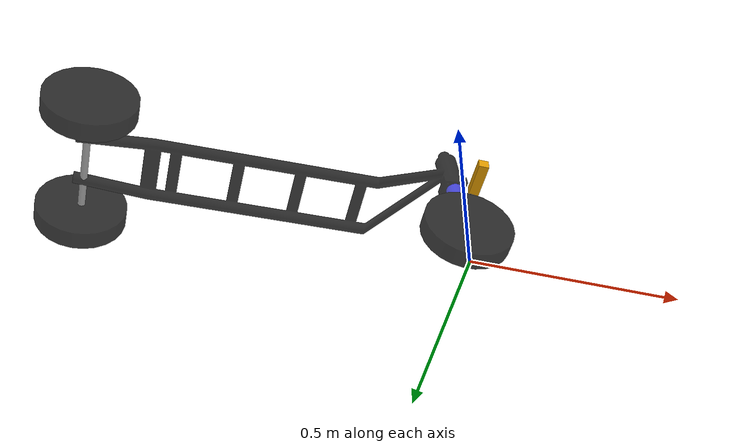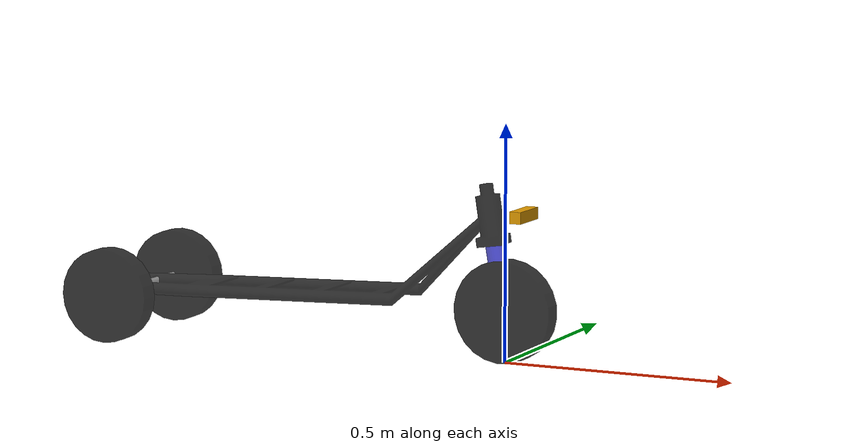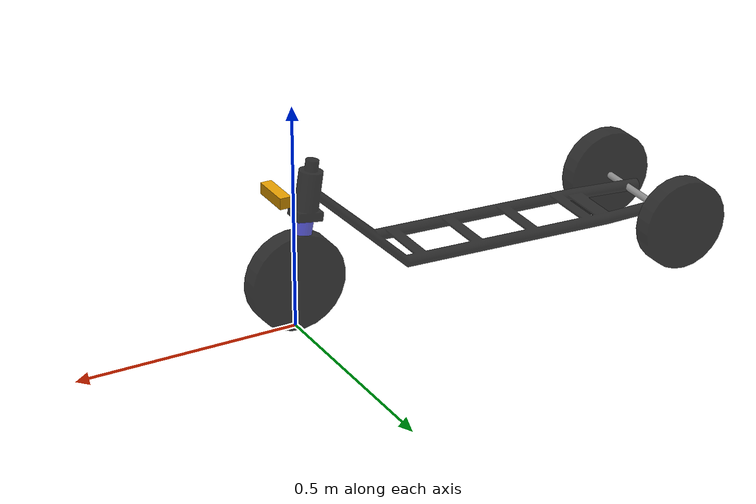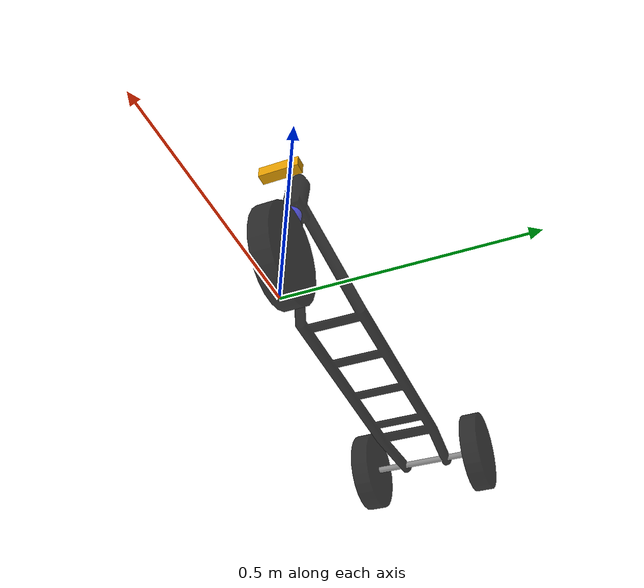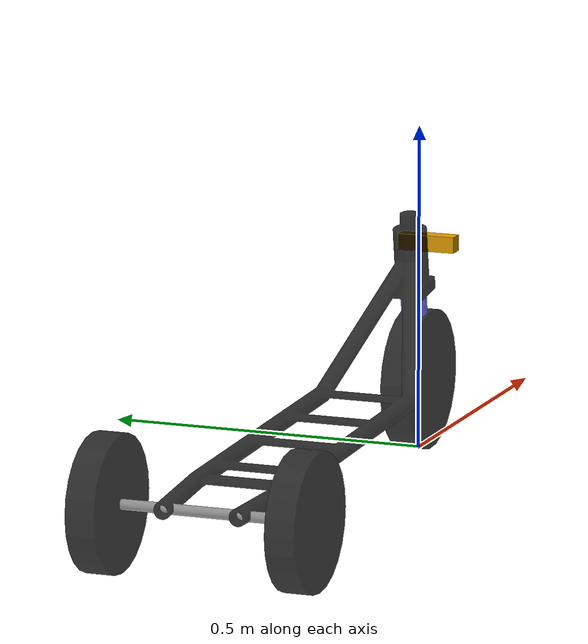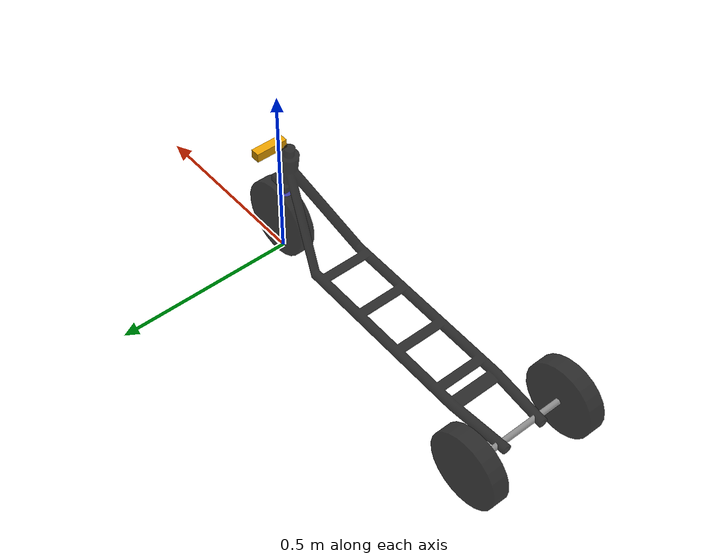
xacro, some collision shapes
<?xml version="1.0"?>
<robot name="scooter" xmlns:xacro="https://www.ros.org/wiki/xacro">

    <xacro:include filename="$(find autonomous-scooter)/urdf/properties.xacro"/>

    <!-- base_link -->
    <link name="base_link"/>

    <!-- steering_link -->
    <link name="steering_link">
        <visual>
            <geometry>
                <cylinder radius="${thick_steering}" length="${steering_length}"/>
            </geometry>
            <origin xyz="0.0 0.0 0.0" rpy="0.0 0.0 0.0"/>
            <material name='blue'/>
        </visual>

        <collision>
            <geometry>
                <cylinder radius="${thick_steering}" length="${steering_length}"/>
            </geometry>
            <origin xyz="0.0 0.0 0.0" rpy="0.0 0.0 0.0"/>
        </collision>

        <mass value="${mass_steering_link}"/>
        <inertia ixx="${steering_ixx}" ixy="${steering_ixy}" ixz="${steering_ixz}" iyy="${steering_iyy}" iyz="${steering_iyz}" izz="${steering_izz}"/>
    </link>

        <joint name="base_to_steering_joint" type="revolute">
            <parent link="base_link"/>
            <child link="steering_link"/>
            <origin xyz="-${(steering_length/2 * cos(alpha))} 0.0 ${(steering_length/2 * sin(alpha)) + rad_front_wheel}" rpy="0.0 -${pi/2 - alpha} 0.0"/>
            <limit lower="-${pi/4}" upper="${pi/4}" effort="0.0" velocity="0.0"/>
            <axis xyz="0 0 1"/>
            <limit effort="30" velocity="1.0"/>
        </joint>

    <!-- front wheel -->
    <link name="front_wheel_link">
        <visual>
            <geometry>
                <cylinder length="${thick_wheel}" radius="${rad_front_wheel}"/>
            </geometry>
            <origin xyz="0.0 0.0 0.0" rpy="${pi/2} 0.0 0.0"/>
            <material name='black'/>
        </visual>

        <collision>
            <geometry>
                <cylinder length="${thick_wheel}" radius="${rad_front_wheel}"/>
            </geometry>
            <origin xyz="0.0 0.0 0.0" rpy="${pi/2} 0.0 0.0"/>
        </collision>

        <mass value="${mass_front_wheel}"/>
        <inertia ixx="${front_ixx}" ixy="${front_ixy}" ixz="${front_ixz}" iyy="${front_iyy}" iyz="${front_iyz}" izz="${front_izz}"/>
    </link>

        <joint name="steering_to_front_joint" type="continuous">
            <parent link="steering_link"/>
            <child link="front_wheel_link"/>
            <origin xyz="0.0 0.0 -${steering_length/2}" rpy="0.0 0.0 0.0"/>
            <axis xyz="0 1 0"/>
            <limit effort="50" velocity="2.0"/>
        </joint>

    <!-- frame_link -->
    <link name="frame_link">
        <visual>
            <geometry>
                <mesh filename="package://autonomous-scooter/meshes/frame.stl" scale="${scale} ${scale} ${scale}"/>
            </geometry>
            <material name='black'/>
            <origin xyz="0.0 0.0 0.0" rpy="${pi/2} ${2* pi/180} ${pi}"/>
        </visual>

        <collision>
            <geometry>
                <mesh filename="package://autonomous-scooter/meshes/frame.stl" scale="${scale} ${scale} ${scale}"/>
            </geometry>
            <origin xyz="0.0 0.0 0.0" rpy="${pi/2} ${2* pi/180} ${pi}"/>
        </collision>

        <mass value="0.0"/>
        <inertia ixx="0.0" ixy="0.0" ixz="0.0" iyy="0.0" iyz="0.0" izz="0.0"/>
    </link>

        <joint name="base_to_frame_joint" type="fixed">
            <parent link="base_link"/>
            <child link="frame_link"/>
            <origin xyz="-0.728 0.0 0.109" rpy="0.0 0.0 0.0"/>
        </joint>

    <!-- back axis -->
    <link name="axis_link">
        <visual>
            <geometry>
                <cylinder radius="0.008" length="${length_back_axis}"/>
            </geometry>
            <origin xyz="0.0 0.0 0.0" rpy="${pi/2} 0.0 0.0"/>
            <material name='gray'/>
        </visual>

        <collision>
            <geometry>
                <cylinder radius="0.01" length="${length_back_axis}"/>
            </geometry>
            <origin xyz="0.0 0.0 0.0" rpy="${pi/2} 0.0 0.0"/>
        </collision>

        <mass value="0.0"/>
        <inertia ixx="0.0" ixy="0.0" ixz="0.0" iyy="0.0" iyz="0.0" izz="0.0"/>
    </link>

        <joint name="axis_joint" type="fixed">
            <parent link="frame_link"/>
            <child link="axis_link"/>
            <origin xyz="-0.14 0.0 -0.008" rpy="0.0 0.0 0.0"/>
        </joint>

    <!-- back wheel left -->
    <link name="back_wheel_left_link">
        <visual>
            <geometry>
                <cylinder length="${thick_wheel}" radius="${rad_back_wheel}"/>
            </geometry>
            <origin xyz="0.0 0.0 0.0" rpy="0.0 0.0 0.0"/>
            <material name='black'/>
        </visual>

        <collision>
            <geometry>
                <cylinder length="${thick_wheel}" radius="${rad_back_wheel}"/>
            </geometry>
            <origin xyz="0.0 0.0 0.0" rpy="0.0 0.0 0.0"/>
        </collision>

        <mass value="${mass_back_wheel}"/>
        <inertia ixx="${back_ixx}" ixy="${back_ixy}" ixz="${back_ixz}" iyy="${back_iyy}" iyz="${back_iyz}" izz="${back_izz}"/>
    </link>

        <joint name="base_to_back_left_joint" type="continuous">
            <parent link="axis_link"/>
            <child link="back_wheel_left_link"/>
            <origin xyz="0 ${length_back_axis/2} 0.0" rpy="${pi/2} 0.0 0.0"/>
            <axis xyz="0 0 1"/>
            <limit effort="50" velocity="2.0"/>
        </joint>

    <!-- back wheel right -->
    <link name="back_wheel_right_link">
        <visual>
            <geometry>
                <cylinder length="${thick_wheel}" radius="${rad_back_wheel}"/>
            </geometry>
            <origin xyz="0.0 0.0 0.0" rpy="0.0 0.0 0.0"/>
            <material name='black'/>
        </visual>

        <collision>
            <geometry>
                <cylinder length="${thick_wheel}" radius="${rad_back_wheel}"/>
            </geometry>
            <origin xyz="0.0 0.0 0.0" rpy="0.0 0.0 0.0"/>
        </collision>

        <mass value="${mass_back_wheel}"/>
        <inertia ixx="${back_ixx}" ixy="${back_ixy}" ixz="${back_ixz}" iyy="${back_iyy}" iyz="${back_iyz}" izz="${back_izz}"/>

    </link>

        <joint name="base_to_back_right_joint" type="continuous">
            <parent link="axis_link"/>
            <child link="back_wheel_right_link"/>
            <origin xyz="0.0 -${length_back_axis / 2} 0.0" rpy="${pi/2} 0.0 0.0"/>
            <axis xyz="0 0 1"/>
            <limit effort="50" velocity="2.0"/>
        </joint>

    <!-- depth camera -->
    <xacro:include filename="$(find autonomous-scooter)/urdf/realsense_urdf/_d435.urdf.xacro" />
    <xacro:sensor_d435 parent="base_link" use_nominal_extrinsics="false" add_plug="false" use_mesh="true">
        <origin xyz="0.03 0 0.3" rpy="0 0 0"/>
    </xacro:sensor_d435>

</robot>

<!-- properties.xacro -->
<robot name="xacro_properties" xmlns:xacro="http://ros.org/wiki/xacro">

    <!-- color properties -->
    <material name='black'>
        <color rgba="0 0 0 0.8"/>
    </material>
    <material name='gray'>
        <color rgba="0.4 0.4 0.4 0.7"/>
    </material>
    <material name='blue'>
        <color rgba="0 0 0.8 0.7"/>
    </material>

    <!-- xacro properties -->
    <xacro:property name="thick_wheel" value="0.044" />

        <!-- frame_link -->
    <xacro:property name="scale" value="${0.01}" />
    <xacro:property name="mass_frame_link" value="6.5" />
    <xacro:property name="front_ixx" value="1.0" />
    <xacro:property name="front_ixy" value="0.0" />
    <xacro:property name="front_ixz" value="0.0" />
    <xacro:property name="front_iyy" value="1.0" />
    <xacro:property name="front_iyz" value="0.0" />
    <xacro:property name="front_izz" value="1.0" />
        <!-- steering_link -->
    <xacro:property name="thick_steering" value="0.02" />
    <xacro:property name="alpha" value="${80 * pi / 180}" />
    <xacro:property name="steering_length" value="0.2" />
    <xacro:property name="mass_steering_link" value="1.0" />
    <xacro:property name="steering_ixx" value="1.0" />
    <xacro:property name="steering_ixy" value="0.0" />
    <xacro:property name="steering_ixz" value="0.0" />
    <xacro:property name="steering_iyy" value="1.0" />
    <xacro:property name="steering_iyz" value="0.0" />
    <xacro:property name="steering_izz" value="1.0" />
        <!-- front wheel  -->
    <xacro:property name="rad_front_wheel" value="${0.216/2}" />
    <xacro:property name="mass_front_wheel" value="3.0" />
    <xacro:property name="front_ixx" value="1.0" />
    <xacro:property name="front_ixy" value="0.0" />
    <xacro:property name="front_ixz" value="0.0" />
    <xacro:property name="front_iyy" value="1.0" />
    <xacro:property name="front_iyz" value="0.0" />
    <xacro:property name="front_izz" value="1.0" />
        <!-- back axis -->
    <xacro:property name="length_back_axis" value="0.3" />
    <xacro:property name="rad_back_wheel" value="${0.203/2}" />
        <!-- back wheel inertia -->
    <xacro:property name="mass_back_wheel" value="1.5" />
    <xacro:property name="back_ixx" value="1.0" />
    <xacro:property name="back_ixy" value="0.0" />
    <xacro:property name="back_ixz" value="0.0" />
    <xacro:property name="back_iyy" value="1.0" />
    <xacro:property name="back_iyz" value="0.0" />
    <xacro:property name="back_izz" value="1.0" />

</robot>

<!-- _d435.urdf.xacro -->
<robot name="sensor_d435" xmlns:xacro="http://ros.org/wiki/xacro">
  <xacro:include filename="$(find autonomous-scooter)/urdf/realsense_urdf/_materials.urdf.xacro" />
  <xacro:include filename="$(find autonomous-scooter)/urdf/realsense_urdf/_usb_plug.urdf.xacro" />

  <xacro:macro name="sensor_d435" params="parent *origin name:=camera use_nominal_extrinsics:=false add_plug:=false use_mesh:=true">
    <xacro:property name="M_PI" value="3.1415926535897931" />

    <!-- The following values are approximate, and the camera node
     publishing TF values with actual calibrated camera extrinsic values -->
    <xacro:property name="d435_cam_depth_to_infra1_offset" value="0.0"/>
    <xacro:property name="d435_cam_depth_to_infra2_offset" value="-0.050"/>
    <xacro:property name="d435_cam_depth_to_color_offset" value="0.015"/>

    <!-- The following values model the aluminum peripherial case for the
  	D435 camera, with the camera joint represented by the actual
  	peripherial camera tripod mount -->
    <xacro:property name="d435_cam_width" value="0.090"/>
    <xacro:property name="d435_cam_height" value="0.025"/>
    <xacro:property name="d435_cam_depth" value="0.02505"/>
    <xacro:property name="d435_cam_mount_from_center_offset" value="0.0149"/>
    <!-- glass cover is 0.1 mm inwards from front aluminium plate -->
    <xacro:property name="d435_glass_to_front" value="0.1e-3"/>
    <!-- see datasheet Revision 007, Fig. 4-4 page 65 -->
    <xacro:property name="d435_zero_depth_to_glass" value="4.2e-3"/>
    <!-- convenience precomputation to avoid clutter-->
    <xacro:property name="d435_mesh_x_offset" value="${d435_cam_mount_from_center_offset-d435_glass_to_front-d435_zero_depth_to_glass}"/>

    <!-- The following offset is relative the the physical D435 camera peripherial
  	camera tripod mount -->
    <xacro:property name="d435_cam_depth_px" value="${d435_cam_mount_from_center_offset}"/>
    <xacro:property name="d435_cam_depth_py" value="0.0175"/>
    <xacro:property name="d435_cam_depth_pz" value="${d435_cam_height/2}"/>

    <!-- camera body, with origin at bottom screw mount -->
    <joint name="${name}_joint" type="fixed">
      <xacro:insert_block name="origin" />
      <parent link="${parent}"/>
      <child link="${name}_bottom_screw_frame" />
    </joint>
    <link name="${name}_bottom_screw_frame"/>

    <joint name="${name}_link_joint" type="fixed">
      <origin xyz="${d435_mesh_x_offset} ${d435_cam_depth_py} ${d435_cam_depth_pz}" rpy="0 0 0"/>
      <parent link="${name}_bottom_screw_frame"/>
      <child link="${name}_link" />
    </joint>

    <link name="${name}_link">
      <visual>
        <xacro:if value="${use_mesh}">
          <!-- the mesh origin is at front plate in between the two infrared camera axes -->
          <origin xyz="${d435_zero_depth_to_glass + d435_glass_to_front} ${-d435_cam_depth_py} 0" rpy="${M_PI/2} 0 ${M_PI/2}"/>
          <geometry>
            <mesh filename="package://realsense2_description/meshes/d435.dae" />
          </geometry>
        </xacro:if>
        <xacro:unless value="${use_mesh}">
          <origin xyz="0 ${-d435_cam_depth_py} 0" rpy="0 0 0"/>
          <geometry>
            <box size="${d435_cam_depth} ${d435_cam_width} ${d435_cam_height}"/>
          </geometry>
          <material name="aluminum"/>
        </xacro:unless>
      </visual>
      <collision>
        <origin xyz="0 ${-d435_cam_depth_py} 0" rpy="0 0 0"/>
        <geometry>
          <box size="${d435_cam_depth} ${d435_cam_width} ${d435_cam_height}"/>
        </geometry>
      </collision>
      <inertial>
        <!-- The following are not reliable values, and should not be used for modeling -->
        <mass value="0.072" />
        <origin xyz="0 0 0" />
        <inertia ixx="0.003881243" ixy="0.0" ixz="0.0" iyy="0.000498940" iyz="0.0" izz="0.003879257" />
      </inertial>
    </link>

    <!-- Use the nominal extrinsics between camera frames if the calibrated extrinsics aren't being published. e.g. running the device in simulation  -->
    <xacro:if value="${use_nominal_extrinsics}">
      <!-- camera depth joints and links -->
      <joint name="${name}_depth_joint" type="fixed">
        <origin xyz="0 0 0" rpy="0 0 0"/>
        <parent link="${name}_link"/>
        <child link="${name}_depth_frame" />
      </joint>
      <link name="${name}_depth_frame"/>

      <joint name="${name}_depth_optical_joint" type="fixed">
        <origin xyz="0 0 0" rpy="${-M_PI/2} 0 ${-M_PI/2}" />
        <parent link="${name}_depth_frame" />
        <child link="${name}_depth_optical_frame" />
      </joint>
      <link name="${name}_depth_optical_frame"/>

      <!-- camera left IR joints and links -->
      <joint name="${name}_infra1_joint" type="fixed">
        <origin xyz="0 ${d435_cam_depth_to_infra1_offset} 0" rpy="0 0 0" />
        <parent link="${name}_link" />
        <child link="${name}_infra1_frame" />
      </joint>
      <link name="${name}_infra1_frame"/>

      <joint name="${name}_infra1_optical_joint" type="fixed">
        <origin xyz="0 0 0" rpy="${-M_PI/2} 0 ${-M_PI/2}" />
        <parent link="${name}_infra1_frame" />
        <child link="${name}_infra1_optical_frame" />
      </joint>
      <link name="${name}_infra1_optical_frame"/>

      <!-- camera right IR joints and links -->
      <joint name="${name}_infra2_joint" type="fixed">
        <origin xyz="0 ${d435_cam_depth_to_infra2_offset} 0" rpy="0 0 0" />
        <parent link="${name}_link" />
        <child link="${name}_infra2_frame" />
      </joint>
      <link name="${name}_infra2_frame"/>

      <joint name="${name}_infra2_optical_joint" type="fixed">
        <origin xyz="0 0 0" rpy="${-M_PI/2} 0 ${-M_PI/2}" />
        <parent link="${name}_infra2_frame" />
        <child link="${name}_infra2_optical_frame" />
      </joint>
      <link name="${name}_infra2_optical_frame"/>

      <!-- camera color joints and links -->
      <joint name="${name}_color_joint" type="fixed">
        <origin xyz="0 ${d435_cam_depth_to_color_offset} 0" rpy="0 0 0" />
        <parent link="${name}_link" />
        <child link="${name}_color_frame" />
      </joint>
      <link name="${name}_color_frame"/>

      <joint name="${name}_color_optical_joint" type="fixed">
        <origin xyz="0 0 0" rpy="${-M_PI/2} 0 ${-M_PI/2}" />
        <parent link="${name}_color_frame" />
        <child link="${name}_color_optical_frame" />
      </joint>
      <link name="${name}_color_optical_frame"/>
    </xacro:if>

    <xacro:if value="${add_plug}">
      <xacro:usb_plug parent="${name}_link" name="${name}_usb_plug">
        <origin xyz="${d435_cam_mount_from_center_offset - 0.02095} ${-d435_cam_depth_py - 0.0353} 0" rpy="0 0 0"/>
      </xacro:usb_plug>
    </xacro:if>
  </xacro:macro>
</robot>

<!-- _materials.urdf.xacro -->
<robot>
  <material name="aluminum">
    <color rgba="0.5 0.5 0.5 1"/>
  </material>
  <material name="plastic">
    <color rgba="0.1 0.1 0.1 1"/>
  </material>
</robot>
